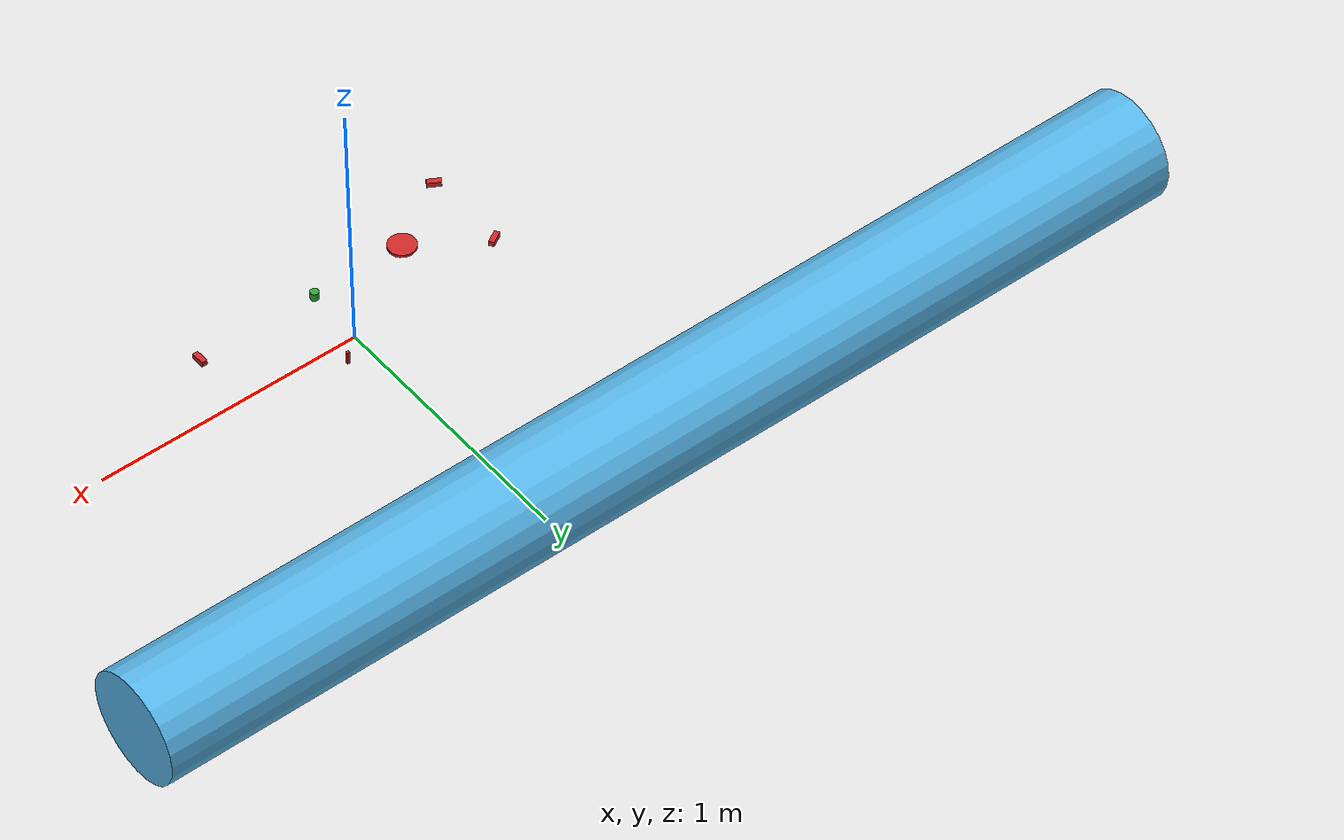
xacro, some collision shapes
<?xml version="1.0"?>
<robot xmlns:xacro="http://ros.org/wiki/xacro" name="lpv-4">
  <xacro:arg name="namespace" default="lpv"/>
  <xacro:property name="namespace" value="$(arg namespace)" scope="global" />

  <xacro:macro name="main_collisions" params="prefix reflect:=1">
    <!-- Main float -->
    <collision name="${prefix}_float">
      <origin xyz="-0.4 ${1.03*reflect} 0.2" rpy="${0*reflect} 1.57 0" />
      <geometry>
        <cylinder length="4" radius="0.2" />
      </geometry>
    </collision>

    <collision name="${prefix}_mid_float">
      <origin xyz="1.85 ${1.03*reflect} 0.3" rpy="${0*reflect} 1.38 0" />
      <geometry>
        <cylinder length="0.5" radius="0.17" />
      </geometry>
    </collision>
    <collision name="${prefix}_front_float">
      <origin xyz="2.3 ${1.03*reflect} 0.4" rpy="${0*reflect} 1.3 0" />
      <geometry>
        <cylinder length="0.45" radius="0.12" />
      </geometry>
    </collision>

    <!-- Front beam -->
    <collision name="front_${prefix}_beam_lower">
      <origin xyz="0.9 ${0.85*reflect} 1" rpy="${0.78*reflect} 0 0" />
      <geometry>
        <cylinder length="0.5" radius="0.04" />
      </geometry>
    </collision>

    <collision name="front_${prefix}_beam_upper">
      <origin xyz="0.9 ${0.6*reflect} 1.18" rpy="${1.35*reflect} 0 0" />
      <geometry>
        <cylinder length="0.2" radius="0.04" />
      </geometry>
    </collision>

    <!-- Mid beam -->
    <collision name="mid_${prefix}_beam_lower">
      <origin xyz="-0.65 ${0.99*reflect} 0.7" rpy="${0.1*reflect} 0.25 0" />
      <geometry>
        <cylinder length="0.45" radius="0.03" />
      </geometry>
    </collision>

    <collision name="mid_${prefix}_beam_medium">
      <origin xyz="-0.57 ${0.87*reflect} 1.05" rpy="${0.75*reflect} 0.25 0" />
      <geometry>
        <cylinder length="0.32" radius="0.03" />
      </geometry>
    </collision>

    <collision name="mid_${prefix}_beam_upper">
      <origin xyz="-0.55 ${0.65*reflect} 1.17" rpy="${1.35*reflect} 0.25 0" />
      <geometry>
        <cylinder length="0.3" radius="0.03" />
      </geometry>
    </collision>

    <!-- Rear beam -->
    <collision name="rear_${prefix}_beam_lower">
      <origin xyz="-0.74 ${1.03*reflect} 0.7" rpy="${0*reflect} -0.15 0" />
      <geometry>
        <cylinder length="0.45" radius="0.03" />
      </geometry>
    </collision>

    <collision name="rear_${prefix}_beam_medium">
      <origin xyz="-0.79 ${0.91*reflect} 1.05" rpy="${0.75*reflect} -0.15 0" />
      <geometry>
        <cylinder length="0.32" radius="0.03" />
      </geometry>
    </collision>

    <collision name="rear_${prefix}_beam_upper">
      <origin xyz="-0.81 ${0.67*reflect} 1.18" rpy="${1.45*reflect} -0.15 0" />
      <geometry>
        <cylinder length="0.3" radius="0.03" />
      </geometry>
    </collision>

    <!-- Joint -->
    <collision name="${prefix}_joint">
      <origin xyz="0.58 ${1.03*reflect} 0.6" rpy="${0*reflect} -0.6 0" />
      <geometry>
        <box size="0.65 0.2 0.1" />
      </geometry>
    </collision>
  </xacro:macro>

  <link name="${namespace}/base_link">
  </link>

  <joint name="${namespace}/dummy_joint" type = "fixed">
    <parent link="${namespace}/base_link"/>
    <child link="${namespace}/dummy_link"/>
  </joint>

  <!-- Basic model of the 16' WAM-V USV -->
  <link name="${namespace}/dummy_link">
    <visual>
      <geometry>
        <mesh filename="package://aimm/aimm_gazebo/meshes/AIMMBoat.dae" scale="0.01 0.01 0.01"/>
      </geometry>
    </visual>

    <!-- Left base collisions -->
    <xacro:main_collisions prefix="left" reflect="1" />

    <!-- Right side collisions -->
    <xacro:main_collisions prefix="right" reflect="-1" />

     <!-- Top base -->
    <collision name="top_base">
      <origin xyz="0 -0 0.1" rpy="0 0 0" />
      <geometry>
        <box size="1 1 0.1" />
      </geometry>
    </collision>

    <inertial>
      <!-- From WAM-V spec sheet -->
      <mass value="180.0"/>
      <inertia ixx="120.0" ixy="0.0" ixz="0.0" iyy="393" iyz="0.0" izz="446.0"/>
    </inertial>
  </link>

  <!-- Joints (frame)-->
  <joint name="${namespace}/gps_joint" type="fixed">
    <parent link="${namespace}/base_link"/>
    <child link="${namespace}/gps_link"/>
    <origin xyz="0.15 0 0.25" rpy="0 0 0"/>
  </joint>

  <joint name="${namespace}/camera_right_joint" type="fixed">
    <parent link="${namespace}/base_link"/>
    <child link="${namespace}/camera_right_link"/>
    <origin xyz="-0.45 0.16 0.3" rpy="0 0 0.524"/> <!-- 150deg-->
  </joint>

  <joint name="${namespace}/camera_left_joint" type="fixed">
    <parent link="${namespace}/base_link"/>
    <child link="${namespace}/camera_left_link"/>
    <origin xyz="-0.45 -0.16 0.3" rpy="0 0 -0.524"/>
  </joint>

  <joint name="${namespace}/camera_verify_joint" type="fixed">
    <parent link="${namespace}/base_link"/>
    <child link="${namespace}/camera_verify_link"/>
    <origin xyz="0.6 0 0.3" rpy="0 0 1.570795 "/>
  </joint>

  <joint name="${namespace}/radar_joint" type="fixed">
    <parent link="${namespace}/base_link"/>
    <child link="${namespace}/radar_link"/>
    <origin xyz="-0.2 0 0.3" rpy="0 0 0"/>
  </joint>

  <joint name="${namespace}/water_level_joint" type="fixed">
    <parent link="${namespace}/base_link"/>
    <child link="${namespace}/water_level_link"/>
    <origin xyz="0.15 0.17 0.2" rpy="0 0 0"/>
  </joint>

  <!-- Link (visual) -->
  <link name="${namespace}/gps_link">
    <visual>
      <origin xyz="0 0 0.05" rpy="0 0 0"/>
      <geometry>
        <cylinder length="0.03" radius="0.015" />
      </geometry>
      <material name="green"/>
        <color rgba="0.2 1 0.2 1"/>
    </visual>
    <collision>
      <origin xyz="0 0 0.05" rpy="0 0 0"/>
      <geometry>
        <cylinder length="0.03" radius="0.015" />
      </geometry>
    </collision>
    <inertial>
      <mass value="1"/>
      <inertia ixx="0.006458" ixy="0.0" ixz="0.0"
       iyy="0.006458" iyz="0.0" izz="0.01125"/>
    </inertial>
  </link>

  <link name="${namespace}/camera_right_link">
    <visual>
      <origin xyz="0 0 0" rpy="0 0 0"/>
      <geometry>
        <box size="0.05 0.02 0.02"/>
      </geometry>
      <material name="red"/>
    </visual>
  </link>

  <link name="${namespace}/camera_left_link">
    <visual>
      <origin xyz="0 0 0" rpy="0 0 0"/>
      <geometry>
        <box size="0.05 0.02 0.02"/>
      </geometry>
      <material name="red"/>
    </visual>
  </link>

  <link name="${namespace}/camera_verify_link">
    <visual>
      <origin xyz="0 0 0" rpy="0 0 0"/>
      <geometry>
        <box size="0.05 0.02 0.02"/>
      </geometry>
      <material name="red"/>
    </visual>
  </link>

  <link name="${namespace}/radar_link">
    <visual>
      <origin xyz="0 0 0" rpy="0 0 0"/>
      <geometry>
        <cylinder length="0.01" radius="0.05" />
      </geometry>
      <material name="red"/>
    </visual>
  </link>

  <link name="${namespace}/water_level_link">
    <visual>
      <origin xyz="0 0 -0.05" rpy="0 0 0"/>
      <geometry>
        <box size="0.01 0.01 0.05"/>
      </geometry>
      <material name="red"/>
    </visual>
  </link>

</robot>
